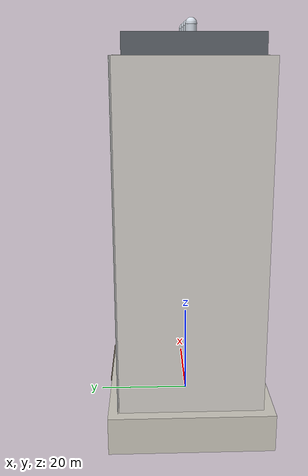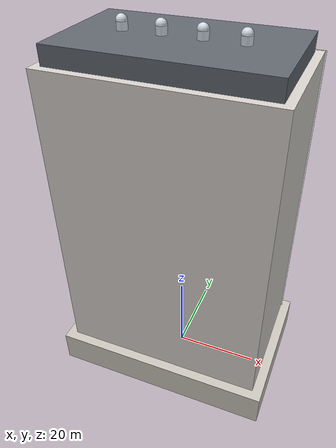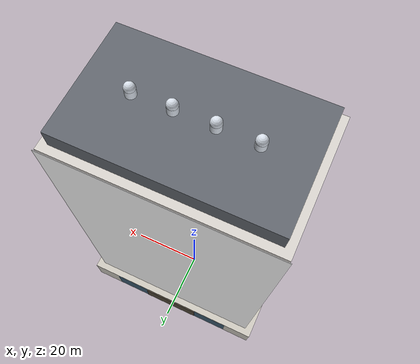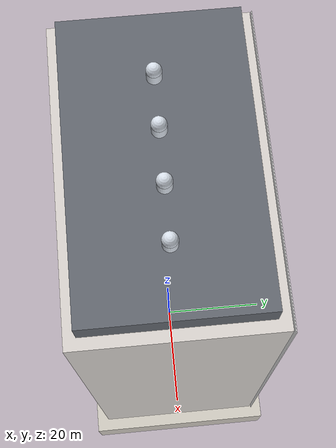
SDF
<?xml version="1.0" ?>
<sdf version="1.8">
  <model name="fuyu_junding_tower">
    <static>true</static>
    <link name="fuyu_link">

      <!-- ==================== 物理碰撞剛體 ==================== -->
      <!-- 1F~2F 豪宅迎賓基座碰撞體 -->
      <collision name="podium_col">
        <pose>0 0 4.0 0 0 0</pose>
        <geometry><box><size>52.0 34.0 8.0</size></box></geometry>
      </collision>

      <!-- 塔樓主體 (Tower Shaft: 24層樓, 高 78m) -->
      <collision name="tower_col">
        <pose>0 0 43.0 0 0 0</pose>
        <geometry><box><size>48.0 30.0 70.0</size></box></geometry>
      </collision>

      <!-- ==================== 視覺呈現：大理石奢華基座 (Luxury Stone Podium) ==================== -->
      <visual name="podium_vis">
        <pose>0 0 4.0 0 0 0</pose>
        <geometry><box><size>52.0 34.0 8.0</size></box></geometry>
        <material>
          <ambient>0.74 0.72 0.68 1</ambient>
          <diffuse>0.80 0.78 0.74 1</diffuse>
        </material>
      </visual>

      <!-- 挑高迎賓大門門廊 (Grand Entrance Portal) -->
      <visual name="entry_portal">
        <pose>0 17.1 4.5 0 0 0</pose>
        <geometry><box><size>16.0 0.4 6.0</size></box></geometry>
        <material><ambient>0.25 0.22 0.18 1</ambient><diffuse>0.32 0.28 0.22 1</diffuse><specular>0.8 0.7 0.5 1</specular></material>
      </visual>

      <!-- 挑高採光大廳玻璃帷幕 -->
      <visual name="lobby_glass">
        <pose>0 17.05 4.0 0 0 0</pose>
        <geometry><box><size>36.0 0.1 6.5</size></box></geometry>
        <material>
          <ambient>0.15 0.25 0.35 0.85</ambient>
          <diffuse>0.20 0.35 0.45 0.85</diffuse>
          <specular>0.9 0.95 1.0 1</specular>
        </material>
      </visual>

      <!-- ==================== 視覺呈現：24 層指標豪宅塔樓主體 (Main Tower Body) ==================== -->
      <!-- ==================== 視覺呈現：24 層指標豪宅塔樓主體 (Main Tower Body) ==================== -->
      <!-- 塔樓主牆面 (現代暖灰石材搭配深古銅金屬邊框) -->
      <visual name="tower_main_vis">
        <pose>0 0 43.0 0 0 0</pose>
        <geometry><box><size>47.5 29.5 70.0</size></box></geometry>
        <material>
          <ambient>0.78 0.76 0.74 1</ambient>
          <diffuse>0.84 0.82 0.80 1</diffuse>
        </material>
      </visual>

      <!-- 台灣高質感豪宅花崗石乾掛與二丁掛陶質面磚高清表皮 (Taiwanese Luxury Residence Facade) -->
      <visual name="fuyu_facade_vis">
        <pose>0 15.06 43.0 0 0 0</pose>
        <geometry><box><size>48.0 0.10 70.0</size></box></geometry>
        <material>
          <diffuse>1 1 1 1</diffuse>
          <pbr>
            <metal>
              <albedo_map>model://fuyu_junding_tower/materials/textures/fuyu_junding_facade.png</albedo_map>
              <roughness>0.35</roughness>
              <metalness>0.08</metalness>
            </metal>
          </pbr>
        </material>
      </visual>

      <!-- ==================== 標誌性頂部發光天際線冠頂 (Illuminated Sky Crown - 82m) ==================== -->
      <visual name="sky_crown_frame">
        <pose>0 0 80.0 0 0 0</pose>
        <geometry><box><size>44.0 26.0 4.0</size></box></geometry>
        <material>
          <ambient>0.3 0.32 0.35 1</ambient>
          <diffuse>0.38 0.40 0.43 1</diffuse>
        </material>
      </visual>

      <!-- 夜間天際線自體發光光帶 (Illuminated Skyline Beacon) -->
      <visual name="sky_crown_light">
        <pose>0 0 81.5 0 0 0</pose>
        <geometry><box><size>40.0 22.0 0.8</size></box></geometry>
        <material>
          <ambient>0.9 0.85 0.6 1</ambient>
          <diffuse>1.0 0.95 0.7 1</diffuse>
          <emissive>0.8 0.75 0.5 1</emissive>
        </material>
      </visual>

      <!-- ==================== 台灣特色天際線：頂樓高空不鏽鋼水塔四聯陣列 ==================== -->
      <visual name="water_tank_1"><pose>-12.0 0 82.5 0 0 0</pose><geometry><cylinder><radius>1.1</radius><length>2.4</length></cylinder></geometry><material><ambient>0.75 0.78 0.82 1</ambient><diffuse>0.85 0.88 0.92 1</diffuse><pbr><metal><roughness>0.15</roughness><metalness>0.92</metalness></metal></pbr></material></visual>
      <visual name="water_tank_1_dome"><pose>-12.0 0 83.75 0 0 0</pose><geometry><sphere><radius>1.12</radius></sphere></geometry><material><ambient>0.75 0.78 0.82 1</ambient><diffuse>0.85 0.88 0.92 1</diffuse><pbr><metal><roughness>0.15</roughness><metalness>0.92</metalness></metal></pbr></material></visual>

      <visual name="water_tank_2"><pose>-4.0 0 82.5 0 0 0</pose><geometry><cylinder><radius>1.1</radius><length>2.4</length></cylinder></geometry><material><ambient>0.75 0.78 0.82 1</ambient><diffuse>0.85 0.88 0.92 1</diffuse><pbr><metal><roughness>0.15</roughness><metalness>0.92</metalness></metal></pbr></material></visual>
      <visual name="water_tank_2_dome"><pose>-4.0 0 83.75 0 0 0</pose><geometry><sphere><radius>1.12</radius></sphere></geometry><material><ambient>0.75 0.78 0.82 1</ambient><diffuse>0.85 0.88 0.92 1</diffuse><pbr><metal><roughness>0.15</roughness><metalness>0.92</metalness></metal></pbr></material></visual>

      <visual name="water_tank_3"><pose>4.0 0 82.5 0 0 0</pose><geometry><cylinder><radius>1.1</radius><length>2.4</length></cylinder></geometry><material><ambient>0.75 0.78 0.82 1</ambient><diffuse>0.85 0.88 0.92 1</diffuse><pbr><metal><roughness>0.15</roughness><metalness>0.92</metalness></metal></pbr></material></visual>
      <visual name="water_tank_3_dome"><pose>4.0 0 83.75 0 0 0</pose><geometry><sphere><radius>1.12</radius></sphere></geometry><material><ambient>0.75 0.78 0.82 1</ambient><diffuse>0.85 0.88 0.92 1</diffuse><pbr><metal><roughness>0.15</roughness><metalness>0.92</metalness></metal></pbr></material></visual>

      <visual name="water_tank_4"><pose>12.0 0 82.5 0 0 0</pose><geometry><cylinder><radius>1.1</radius><length>2.4</length></cylinder></geometry><material><ambient>0.75 0.78 0.82 1</ambient><diffuse>0.85 0.88 0.92 1</diffuse><pbr><metal><roughness>0.15</roughness><metalness>0.92</metalness></metal></pbr></material></visual>
      <visual name="water_tank_4_dome"><pose>12.0 0 83.75 0 0 0</pose><geometry><sphere><radius>1.12</radius></sphere></geometry><material><ambient>0.75 0.78 0.82 1</ambient><diffuse>0.85 0.88 0.92 1</diffuse><pbr><metal><roughness>0.15</roughness><metalness>0.92</metalness></metal></pbr></material></visual>

    </link>
  </model>
</sdf>
